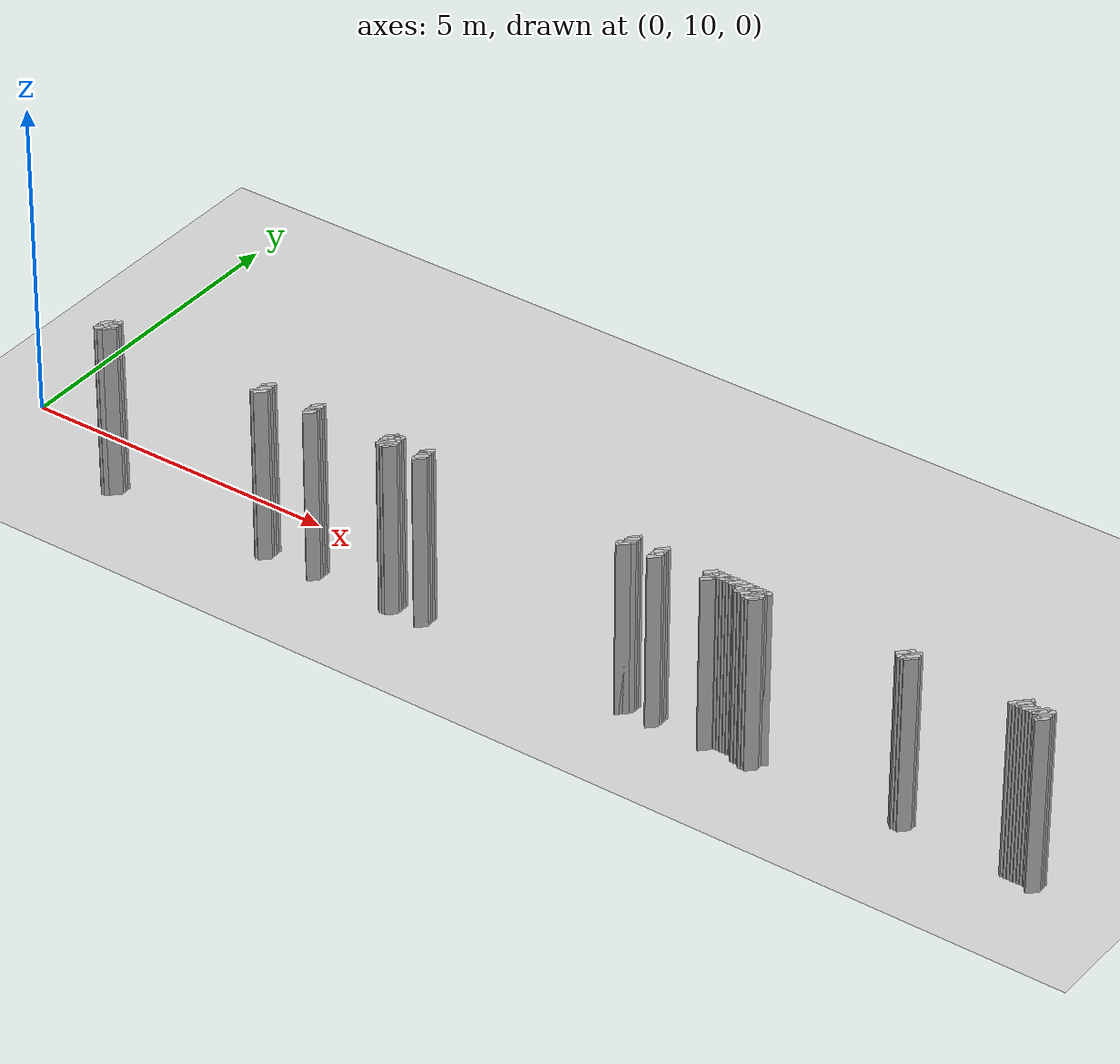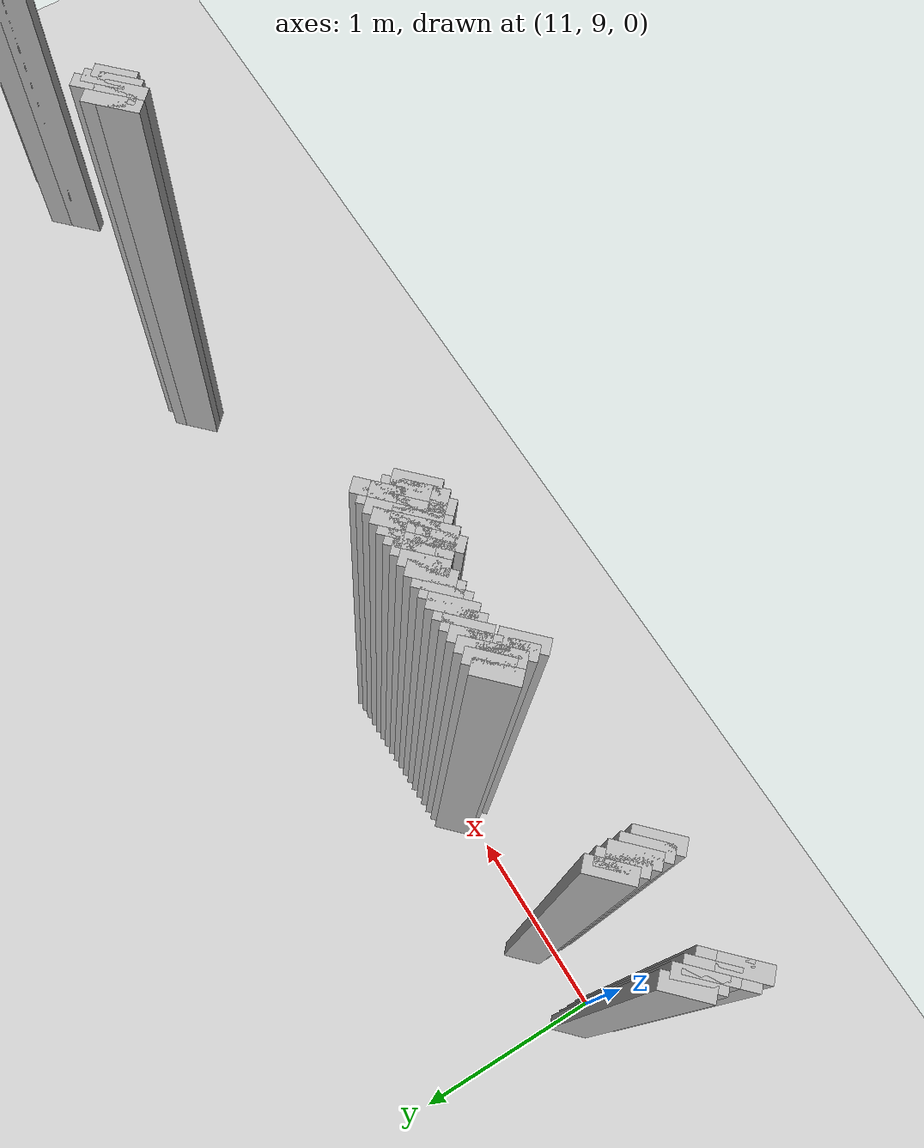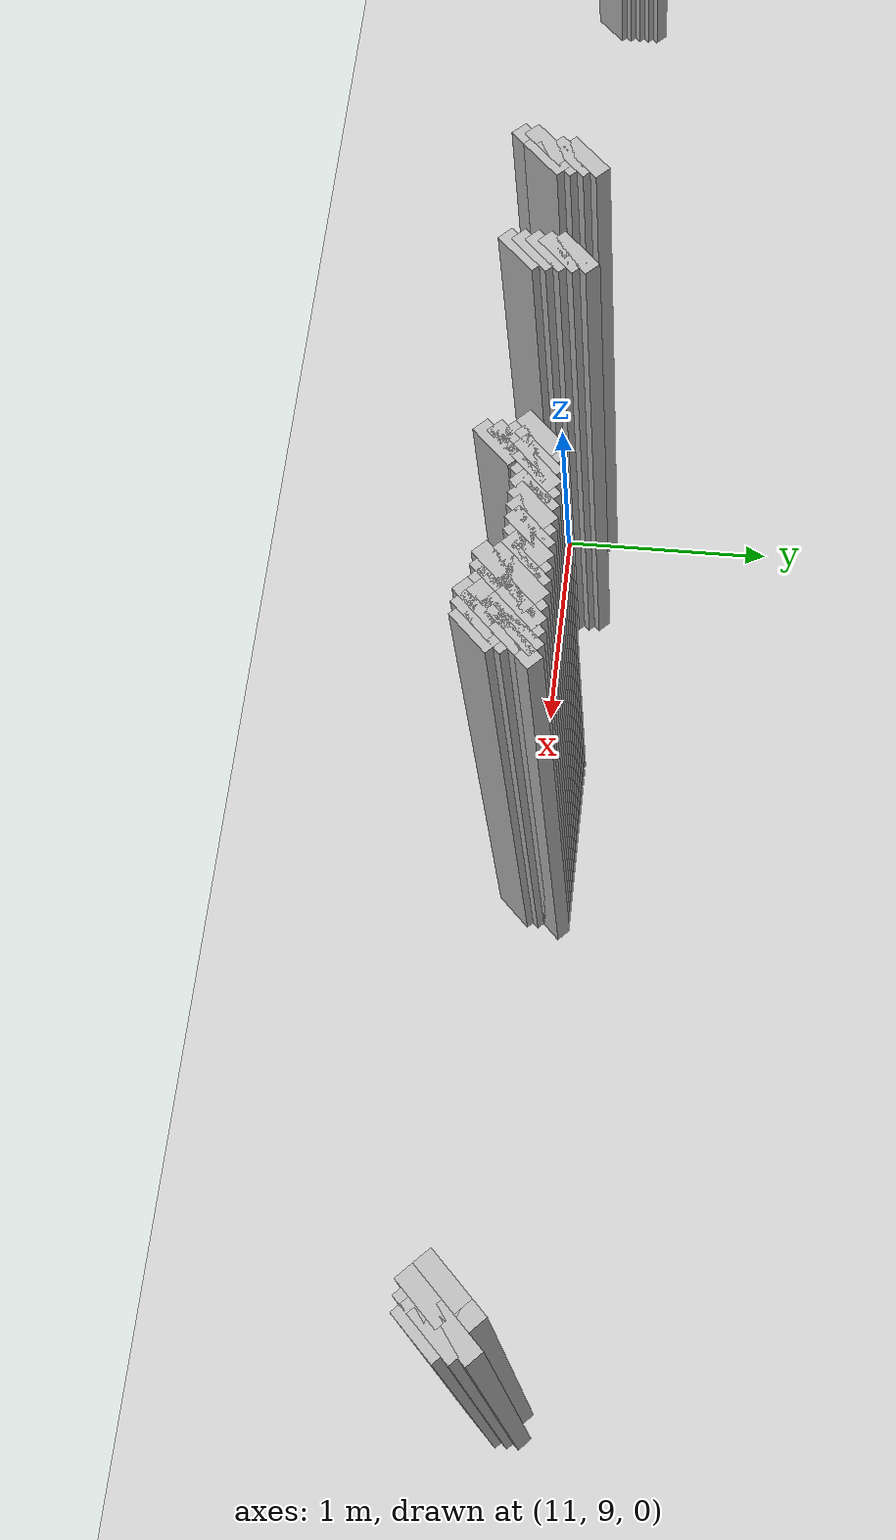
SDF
<sdf version="1.5">
 <world name="default">
  <include><uri>model://ground_plane</uri></include>
  <include><uri>model://sun</uri></include>
  <model name="grey_wall_1798">
   <static>1</static>
   <link name="link">
    <pose>4.8500000000000005 9.15  1.4 0 0 -0.7853981633974483</pose>
    <collision name="collision">
     <geometry><box><size>0.07071067811865576 .2  2.8</size></box></geometry>
    </collision>
    <visual name="visual">
     <cast_shadows>0</cast_shadows>
     <geometry><box><size>0.07071067811865576 .2  2.8</size></box></geometry>
    </visual>
   </link>
  </model>
  <model name="grey_wall_1799">
   <static>1</static>
   <link name="link">
    <pose>5.7 9.15  1.4 0 0 -0.7853981633974483</pose>
    <collision name="collision">
     <geometry><box><size>0.07071067811865576 .2  2.8</size></box></geometry>
    </collision>
    <visual name="visual">
     <cast_shadows>0</cast_shadows>
     <geometry><box><size>0.07071067811865576 .2  2.8</size></box></geometry>
    </visual>
   </link>
  </model>
  <model name="grey_wall_1800">
   <static>1</static>
   <link name="link">
    <pose>6.95 9.15  1.4 0 0 -0.7853981633974483</pose>
    <collision name="collision">
     <geometry><box><size>0.07071067811865576 .2  2.8</size></box></geometry>
    </collision>
    <visual name="visual">
     <cast_shadows>0</cast_shadows>
     <geometry><box><size>0.07071067811865576 .2  2.8</size></box></geometry>
    </visual>
   </link>
  </model>
  <model name="grey_wall_1801">
   <static>1</static>
   <link name="link">
    <pose>7.0 9.15  1.4 0 0 -0.7853981633974483</pose>
    <collision name="collision">
     <geometry><box><size>0.07071067811865576 .2  2.8</size></box></geometry>
    </collision>
    <visual name="visual">
     <cast_shadows>0</cast_shadows>
     <geometry><box><size>0.07071067811865576 .2  2.8</size></box></geometry>
    </visual>
   </link>
  </model>
  <model name="grey_wall_1802">
   <static>1</static>
   <link name="link">
    <pose>7.050000000000001 9.15  1.4 0 0 -0.7853981633974483</pose>
    <collision name="collision">
     <geometry><box><size>0.07071067811865576 .2  2.8</size></box></geometry>
    </collision>
    <visual name="visual">
     <cast_shadows>0</cast_shadows>
     <geometry><box><size>0.07071067811865576 .2  2.8</size></box></geometry>
    </visual>
   </link>
  </model>
  <model name="grey_wall_1803">
   <static>1</static>
   <link name="link">
    <pose>7.550000000000001 9.15  1.4 0 0 -0.7853981633974483</pose>
    <collision name="collision">
     <geometry><box><size>0.07071067811865576 .2  2.8</size></box></geometry>
    </collision>
    <visual name="visual">
     <cast_shadows>0</cast_shadows>
     <geometry><box><size>0.07071067811865576 .2  2.8</size></box></geometry>
    </visual>
   </link>
  </model>
  <model name="grey_wall_1804">
   <static>1</static>
   <link name="link">
    <pose>10.950000000000001 9.15  1.4 0 0 -0.7853981633974483</pose>
    <collision name="collision">
     <geometry><box><size>0.07071067811865576 .2  2.8</size></box></geometry>
    </collision>
    <visual name="visual">
     <cast_shadows>0</cast_shadows>
     <geometry><box><size>0.07071067811865576 .2  2.8</size></box></geometry>
    </visual>
   </link>
  </model>
  <model name="grey_wall_1805">
   <static>1</static>
   <link name="link">
    <pose>11.4 9.15  1.4 0 0 -0.7853981633974483</pose>
    <collision name="collision">
     <geometry><box><size>0.07071067811865576 .2  2.8</size></box></geometry>
    </collision>
    <visual name="visual">
     <cast_shadows>0</cast_shadows>
     <geometry><box><size>0.07071067811865576 .2  2.8</size></box></geometry>
    </visual>
   </link>
  </model>
  <model name="grey_wall_1806">
   <static>1</static>
   <link name="link">
    <pose>15.25 9.15  1.4 0 0 -0.7853981633974483</pose>
    <collision name="collision">
     <geometry><box><size>0.07071067811865576 .2  2.8</size></box></geometry>
    </collision>
    <visual name="visual">
     <cast_shadows>0</cast_shadows>
     <geometry><box><size>0.07071067811865576 .2  2.8</size></box></geometry>
    </visual>
   </link>
  </model>
  <model name="grey_wall_1807">
   <static>1</static>
   <link name="link">
    <pose>15.350000000000001 9.15  1.4 0 0 -0.7853981633974483</pose>
    <collision name="collision">
     <geometry><box><size>0.07071067811865576 .2  2.8</size></box></geometry>
    </collision>
    <visual name="visual">
     <cast_shadows>0</cast_shadows>
     <geometry><box><size>0.07071067811865576 .2  2.8</size></box></geometry>
    </visual>
   </link>
  </model>
  <model name="grey_wall_1808">
   <static>1</static>
   <link name="link">
    <pose>17.05 9.15  1.4 0 0 -0.7853981633974838</pose>
    <collision name="collision">
     <geometry><box><size>0.07071067811865325 .2  2.8</size></box></geometry>
    </collision>
    <visual name="visual">
     <cast_shadows>0</cast_shadows>
     <geometry><box><size>0.07071067811865325 .2  2.8</size></box></geometry>
    </visual>
   </link>
  </model>
  <model name="grey_wall_1809">
   <static>1</static>
   <link name="link">
    <pose>2.2 9.1  1.4 0 0 -0.7853981633974572</pose>
    <collision name="collision">
     <geometry><box><size>0.07071067811865513 .2  2.8</size></box></geometry>
    </collision>
    <visual name="visual">
     <cast_shadows>0</cast_shadows>
     <geometry><box><size>0.07071067811865513 .2  2.8</size></box></geometry>
    </visual>
   </link>
  </model>
  <model name="grey_wall_1810">
   <static>1</static>
   <link name="link">
    <pose>4.8500000000000005 9.1  1.4 0 0 -0.7853981633974483</pose>
    <collision name="collision">
     <geometry><box><size>0.07071067811865576 .2  2.8</size></box></geometry>
    </collision>
    <visual name="visual">
     <cast_shadows>0</cast_shadows>
     <geometry><box><size>0.07071067811865576 .2  2.8</size></box></geometry>
    </visual>
   </link>
  </model>
  <model name="grey_wall_1811">
   <static>1</static>
   <link name="link">
    <pose>5.7 9.1  1.4 0 0 -0.7853981633974483</pose>
    <collision name="collision">
     <geometry><box><size>0.07071067811865576 .2  2.8</size></box></geometry>
    </collision>
    <visual name="visual">
     <cast_shadows>0</cast_shadows>
     <geometry><box><size>0.07071067811865576 .2  2.8</size></box></geometry>
    </visual>
   </link>
  </model>
  <model name="grey_wall_1812">
   <static>1</static>
   <link name="link">
    <pose>6.95 9.1  1.4 0 0 -0.7853981633974483</pose>
    <collision name="collision">
     <geometry><box><size>0.07071067811865576 .2  2.8</size></box></geometry>
    </collision>
    <visual name="visual">
     <cast_shadows>0</cast_shadows>
     <geometry><box><size>0.07071067811865576 .2  2.8</size></box></geometry>
    </visual>
   </link>
  </model>
  <model name="grey_wall_1813">
   <static>1</static>
   <link name="link">
    <pose>7.0 9.1  1.4 0 0 -0.7853981633974483</pose>
    <collision name="collision">
     <geometry><box><size>0.07071067811865576 .2  2.8</size></box></geometry>
    </collision>
    <visual name="visual">
     <cast_shadows>0</cast_shadows>
     <geometry><box><size>0.07071067811865576 .2  2.8</size></box></geometry>
    </visual>
   </link>
  </model>
  <model name="grey_wall_1814">
   <static>1</static>
   <link name="link">
    <pose>7.050000000000001 9.1  1.4 0 0 -0.7853981633974483</pose>
    <collision name="collision">
     <geometry><box><size>0.07071067811865576 .2  2.8</size></box></geometry>
    </collision>
    <visual name="visual">
     <cast_shadows>0</cast_shadows>
     <geometry><box><size>0.07071067811865576 .2  2.8</size></box></geometry>
    </visual>
   </link>
  </model>
  <model name="grey_wall_1815">
   <static>1</static>
   <link name="link">
    <pose>7.550000000000001 9.1  1.4 0 0 -0.7853981633974483</pose>
    <collision name="collision">
     <geometry><box><size>0.07071067811865576 .2  2.8</size></box></geometry>
    </collision>
    <visual name="visual">
     <cast_shadows>0</cast_shadows>
     <geometry><box><size>0.07071067811865576 .2  2.8</size></box></geometry>
    </visual>
   </link>
  </model>
  <model name="grey_wall_1816">
   <static>1</static>
   <link name="link">
    <pose>10.950000000000001 9.1  1.4 0 0 -0.7853981633974483</pose>
    <collision name="collision">
     <geometry><box><size>0.07071067811865576 .2  2.8</size></box></geometry>
    </collision>
    <visual name="visual">
     <cast_shadows>0</cast_shadows>
     <geometry><box><size>0.07071067811865576 .2  2.8</size></box></geometry>
    </visual>
   </link>
  </model>
  <model name="grey_wall_1817">
   <static>1</static>
   <link name="link">
    <pose>11.4 9.1  1.4 0 0 -0.7853981633974483</pose>
    <collision name="collision">
     <geometry><box><size>0.07071067811865576 .2  2.8</size></box></geometry>
    </collision>
    <visual name="visual">
     <cast_shadows>0</cast_shadows>
     <geometry><box><size>0.07071067811865576 .2  2.8</size></box></geometry>
    </visual>
   </link>
  </model>
  <model name="grey_wall_1818">
   <static>1</static>
   <link name="link">
    <pose>12.200000000000001 9.1  1.4 0 0 -0.7853981633974483</pose>
    <collision name="collision">
     <geometry><box><size>0.07071067811865576 .2  2.8</size></box></geometry>
    </collision>
    <visual name="visual">
     <cast_shadows>0</cast_shadows>
     <geometry><box><size>0.07071067811865576 .2  2.8</size></box></geometry>
    </visual>
   </link>
  </model>
  <model name="grey_wall_1819">
   <static>1</static>
   <link name="link">
    <pose>12.25 9.1  1.4 0 0 -0.7853981633974483</pose>
    <collision name="collision">
     <geometry><box><size>0.07071067811865576 .2  2.8</size></box></geometry>
    </collision>
    <visual name="visual">
     <cast_shadows>0</cast_shadows>
     <geometry><box><size>0.07071067811865576 .2  2.8</size></box></geometry>
    </visual>
   </link>
  </model>
  <model name="grey_wall_1820">
   <static>1</static>
   <link name="link">
    <pose>12.3 9.1  1.4 0 0 -0.7853981633974483</pose>
    <collision name="collision">
     <geometry><box><size>0.07071067811865576 .2  2.8</size></box></geometry>
    </collision>
    <visual name="visual">
     <cast_shadows>0</cast_shadows>
     <geometry><box><size>0.07071067811865576 .2  2.8</size></box></geometry>
    </visual>
   </link>
  </model>
  <model name="grey_wall_1821">
   <static>1</static>
   <link name="link">
    <pose>12.350000000000001 9.1  1.4 0 0 -0.7853981633974483</pose>
    <collision name="collision">
     <geometry><box><size>0.07071067811865576 .2  2.8</size></box></geometry>
    </collision>
    <visual name="visual">
     <cast_shadows>0</cast_shadows>
     <geometry><box><size>0.07071067811865576 .2  2.8</size></box></geometry>
    </visual>
   </link>
  </model>
  <model name="grey_wall_1822">
   <static>1</static>
   <link name="link">
    <pose>12.4 9.1  1.4 0 0 -0.7853981633974483</pose>
    <collision name="collision">
     <geometry><box><size>0.07071067811865576 .2  2.8</size></box></geometry>
    </collision>
    <visual name="visual">
     <cast_shadows>0</cast_shadows>
     <geometry><box><size>0.07071067811865576 .2  2.8</size></box></geometry>
    </visual>
   </link>
  </model>
  <model name="grey_wall_1823">
   <static>1</static>
   <link name="link">
    <pose>12.450000000000001 9.1  1.4 0 0 -0.7853981633974483</pose>
    <collision name="collision">
     <geometry><box><size>0.07071067811865576 .2  2.8</size></box></geometry>
    </collision>
    <visual name="visual">
     <cast_shadows>0</cast_shadows>
     <geometry><box><size>0.07071067811865576 .2  2.8</size></box></geometry>
    </visual>
   </link>
  </model>
  <model name="grey_wall_1824">
   <static>1</static>
   <link name="link">
    <pose>12.5 9.1  1.4 0 0 -0.7853981633974483</pose>
    <collision name="collision">
     <geometry><box><size>0.07071067811865576 .2  2.8</size></box></geometry>
    </collision>
    <visual name="visual">
     <cast_shadows>0</cast_shadows>
     <geometry><box><size>0.07071067811865576 .2  2.8</size></box></geometry>
    </visual>
   </link>
  </model>
  <model name="grey_wall_1825">
   <static>1</static>
   <link name="link">
    <pose>12.55 9.1  1.4 0 0 -0.7853981633974483</pose>
    <collision name="collision">
     <geometry><box><size>0.07071067811865576 .2  2.8</size></box></geometry>
    </collision>
    <visual name="visual">
     <cast_shadows>0</cast_shadows>
     <geometry><box><size>0.07071067811865576 .2  2.8</size></box></geometry>
    </visual>
   </link>
  </model>
  <model name="grey_wall_1826">
   <static>1</static>
   <link name="link">
    <pose>12.600000000000001 9.1  1.4 0 0 -0.7853981633974483</pose>
    <collision name="collision">
     <geometry><box><size>0.07071067811865576 .2  2.8</size></box></geometry>
    </collision>
    <visual name="visual">
     <cast_shadows>0</cast_shadows>
     <geometry><box><size>0.07071067811865576 .2  2.8</size></box></geometry>
    </visual>
   </link>
  </model>
  <model name="grey_wall_1827">
   <static>1</static>
   <link name="link">
    <pose>12.65 9.1  1.4 0 0 -0.7853981633974483</pose>
    <collision name="collision">
     <geometry><box><size>0.07071067811865576 .2  2.8</size></box></geometry>
    </collision>
    <visual name="visual">
     <cast_shadows>0</cast_shadows>
     <geometry><box><size>0.07071067811865576 .2  2.8</size></box></geometry>
    </visual>
   </link>
  </model>
  <model name="grey_wall_1828">
   <static>1</static>
   <link name="link">
    <pose>12.700000000000001 9.1  1.4 0 0 -0.7853981633974483</pose>
    <collision name="collision">
     <geometry><box><size>0.07071067811865576 .2  2.8</size></box></geometry>
    </collision>
    <visual name="visual">
     <cast_shadows>0</cast_shadows>
     <geometry><box><size>0.07071067811865576 .2  2.8</size></box></geometry>
    </visual>
   </link>
  </model>
  <model name="grey_wall_1829">
   <static>1</static>
   <link name="link">
    <pose>12.75 9.1  1.4 0 0 -0.7853981633974483</pose>
    <collision name="collision">
     <geometry><box><size>0.07071067811865576 .2  2.8</size></box></geometry>
    </collision>
    <visual name="visual">
     <cast_shadows>0</cast_shadows>
     <geometry><box><size>0.07071067811865576 .2  2.8</size></box></geometry>
    </visual>
   </link>
  </model>
  <model name="grey_wall_1830">
   <static>1</static>
   <link name="link">
    <pose>12.8 9.1  1.4 0 0 -0.7853981633974483</pose>
    <collision name="collision">
     <geometry><box><size>0.07071067811865576 .2  2.8</size></box></geometry>
    </collision>
    <visual name="visual">
     <cast_shadows>0</cast_shadows>
     <geometry><box><size>0.07071067811865576 .2  2.8</size></box></geometry>
    </visual>
   </link>
  </model>
  <model name="grey_wall_1831">
   <static>1</static>
   <link name="link">
    <pose>12.850000000000001 9.1  1.4 0 0 -0.7853981633974483</pose>
    <collision name="collision">
     <geometry><box><size>0.07071067811865576 .2  2.8</size></box></geometry>
    </collision>
    <visual name="visual">
     <cast_shadows>0</cast_shadows>
     <geometry><box><size>0.07071067811865576 .2  2.8</size></box></geometry>
    </visual>
   </link>
  </model>
  <model name="grey_wall_1832">
   <static>1</static>
   <link name="link">
    <pose>12.9 9.1  1.4 0 0 -0.7853981633974483</pose>
    <collision name="collision">
     <geometry><box><size>0.07071067811865576 .2  2.8</size></box></geometry>
    </collision>
    <visual name="visual">
     <cast_shadows>0</cast_shadows>
     <geometry><box><size>0.07071067811865576 .2  2.8</size></box></geometry>
    </visual>
   </link>
  </model>
  <model name="grey_wall_1833">
   <static>1</static>
   <link name="link">
    <pose>12.950000000000001 9.1  1.4 0 0 -0.7853981633974483</pose>
    <collision name="collision">
     <geometry><box><size>0.07071067811865576 .2  2.8</size></box></geometry>
    </collision>
    <visual name="visual">
     <cast_shadows>0</cast_shadows>
     <geometry><box><size>0.07071067811865576 .2  2.8</size></box></geometry>
    </visual>
   </link>
  </model>
  <model name="grey_wall_1834">
   <static>1</static>
   <link name="link">
    <pose>13.0 9.1  1.4 0 0 -0.7853981633974483</pose>
    <collision name="collision">
     <geometry><box><size>0.07071067811865576 .2  2.8</size></box></geometry>
    </collision>
    <visual name="visual">
     <cast_shadows>0</cast_shadows>
     <geometry><box><size>0.07071067811865576 .2  2.8</size></box></geometry>
    </visual>
   </link>
  </model>
  <model name="grey_wall_1835">
   <static>1</static>
   <link name="link">
    <pose>13.05 9.1  1.4 0 0 -0.7853981633974483</pose>
    <collision name="collision">
     <geometry><box><size>0.07071067811865576 .2  2.8</size></box></geometry>
    </collision>
    <visual name="visual">
     <cast_shadows>0</cast_shadows>
     <geometry><box><size>0.07071067811865576 .2  2.8</size></box></geometry>
    </visual>
   </link>
  </model>
  <model name="grey_wall_1836">
   <static>1</static>
   <link name="link">
    <pose>15.200000000000001 9.1  1.4 0 0 -0.7853981633974483</pose>
    <collision name="collision">
     <geometry><box><size>0.07071067811865576 .2  2.8</size></box></geometry>
    </collision>
    <visual name="visual">
     <cast_shadows>0</cast_shadows>
     <geometry><box><size>0.07071067811865576 .2  2.8</size></box></geometry>
    </visual>
   </link>
  </model>
  <model name="grey_wall_1837">
   <static>1</static>
   <link name="link">
    <pose>15.25 9.1  1.4 0 0 -0.7853981633974483</pose>
    <collision name="collision">
     <geometry><box><size>0.07071067811865576 .2  2.8</size></box></geometry>
    </collision>
    <visual name="visual">
     <cast_shadows>0</cast_shadows>
     <geometry><box><size>0.07071067811865576 .2  2.8</size></box></geometry>
    </visual>
   </link>
  </model>
  <model name="grey_wall_1838">
   <static>1</static>
   <link name="link">
    <pose>15.350000000000001 9.1  1.4 0 0 -0.7853981633974483</pose>
    <collision name="collision">
     <geometry><box><size>0.07071067811865576 .2  2.8</size></box></geometry>
    </collision>
    <visual name="visual">
     <cast_shadows>0</cast_shadows>
     <geometry><box><size>0.07071067811865576 .2  2.8</size></box></geometry>
    </visual>
   </link>
  </model>
  <model name="grey_wall_1839">
   <static>1</static>
   <link name="link">
    <pose>17.05 9.1  1.4 0 0 -0.7853981633974838</pose>
    <collision name="collision">
     <geometry><box><size>0.07071067811865325 .2  2.8</size></box></geometry>
    </collision>
    <visual name="visual">
     <cast_shadows>0</cast_shadows>
     <geometry><box><size>0.07071067811865325 .2  2.8</size></box></geometry>
    </visual>
   </link>
  </model>
  <model name="grey_wall_1840">
   <static>1</static>
   <link name="link">
    <pose>17.3 9.1  1.4 0 0 -0.7853981633974838</pose>
    <collision name="collision">
     <geometry><box><size>0.07071067811865325 .2  2.8</size></box></geometry>
    </collision>
    <visual name="visual">
     <cast_shadows>0</cast_shadows>
     <geometry><box><size>0.07071067811865325 .2  2.8</size></box></geometry>
    </visual>
   </link>
  </model>
  <model name="grey_wall_1841">
   <static>1</static>
   <link name="link">
    <pose>17.35 9.1  1.4 0 0 -0.7853981633974838</pose>
    <collision name="collision">
     <geometry><box><size>0.07071067811865325 .2  2.8</size></box></geometry>
    </collision>
    <visual name="visual">
     <cast_shadows>0</cast_shadows>
     <geometry><box><size>0.07071067811865325 .2  2.8</size></box></geometry>
    </visual>
   </link>
  </model>
  <model name="grey_wall_1842">
   <static>1</static>
   <link name="link">
    <pose>17.400000000000002 9.1  1.4 0 0 -0.7853981633974838</pose>
    <collision name="collision">
     <geometry><box><size>0.07071067811865325 .2  2.8</size></box></geometry>
    </collision>
    <visual name="visual">
     <cast_shadows>0</cast_shadows>
     <geometry><box><size>0.07071067811865325 .2  2.8</size></box></geometry>
    </visual>
   </link>
  </model>
  <model name="grey_wall_1843">
   <static>1</static>
   <link name="link">
    <pose>2.1 9.05  1.4 0 0 -0.7853981633974572</pose>
    <collision name="collision">
     <geometry><box><size>0.07071067811865513 .2  2.8</size></box></geometry>
    </collision>
    <visual name="visual">
     <cast_shadows>0</cast_shadows>
     <geometry><box><size>0.07071067811865513 .2  2.8</size></box></geometry>
    </visual>
   </link>
  </model>
  <model name="grey_wall_1844">
   <static>1</static>
   <link name="link">
    <pose>2.15 9.05  1.4 0 0 -0.7853981633974572</pose>
    <collision name="collision">
     <geometry><box><size>0.07071067811865513 .2  2.8</size></box></geometry>
    </collision>
    <visual name="visual">
     <cast_shadows>0</cast_shadows>
     <geometry><box><size>0.07071067811865513 .2  2.8</size></box></geometry>
    </visual>
   </link>
  </model>
  <model name="grey_wall_1845">
   <static>1</static>
   <link name="link">
    <pose>2.2 9.05  1.4 0 0 -0.7853981633974572</pose>
    <collision name="collision">
     <geometry><box><size>0.07071067811865513 .2  2.8</size></box></geometry>
    </collision>
    <visual name="visual">
     <cast_shadows>0</cast_shadows>
     <geometry><box><size>0.07071067811865513 .2  2.8</size></box></geometry>
    </visual>
   </link>
  </model>
  <model name="grey_wall_1846">
   <static>1</static>
   <link name="link">
    <pose>4.8500000000000005 9.05  1.4 0 0 -0.7853981633974483</pose>
    <collision name="collision">
     <geometry><box><size>0.07071067811865576 .2  2.8</size></box></geometry>
    </collision>
    <visual name="visual">
     <cast_shadows>0</cast_shadows>
     <geometry><box><size>0.07071067811865576 .2  2.8</size></box></geometry>
    </visual>
   </link>
  </model>
  <model name="grey_wall_1847">
   <static>1</static>
   <link name="link">
    <pose>5.7 9.05  1.4 0 0 -0.7853981633974483</pose>
    <collision name="collision">
     <geometry><box><size>0.07071067811865576 .2  2.8</size></box></geometry>
    </collision>
    <visual name="visual">
     <cast_shadows>0</cast_shadows>
     <geometry><box><size>0.07071067811865576 .2  2.8</size></box></geometry>
    </visual>
   </link>
  </model>
  <model name="grey_wall_1848">
   <static>1</static>
   <link name="link">
    <pose>6.95 9.05  1.4 0 0 -0.7853981633974483</pose>
    <collision name="collision">
     <geometry><box><size>0.07071067811865576 .2  2.8</size></box></geometry>
    </collision>
    <visual name="visual">
     <cast_shadows>0</cast_shadows>
     <geometry><box><size>0.07071067811865576 .2  2.8</size></box></geometry>
    </visual>
   </link>
  </model>
  <model name="grey_wall_1849">
   <static>1</static>
   <link name="link">
    <pose>7.050000000000001 9.05  1.4 0 0 -0.7853981633974483</pose>
    <collision name="collision">
     <geometry><box><size>0.07071067811865576 .2  2.8</size></box></geometry>
    </collision>
    <visual name="visual">
     <cast_shadows>0</cast_shadows>
     <geometry><box><size>0.07071067811865576 .2  2.8</size></box></geometry>
    </visual>
   </link>
  </model>
  <model name="grey_wall_1850">
   <static>1</static>
   <link name="link">
    <pose>7.550000000000001 9.05  1.4 0 0 -0.7853981633974483</pose>
    <collision name="collision">
     <geometry><box><size>0.07071067811865576 .2  2.8</size></box></geometry>
    </collision>
    <visual name="visual">
     <cast_shadows>0</cast_shadows>
     <geometry><box><size>0.07071067811865576 .2  2.8</size></box></geometry>
    </visual>
   </link>
  </model>
  <model name="grey_wall_1851">
   <static>1</static>
   <link name="link">
    <pose>10.950000000000001 9.05  1.4 0 0 -0.7853981633974483</pose>
    <collision name="collision">
     <geometry><box><size>0.07071067811865576 .2  2.8</size></box></geometry>
    </collision>
    <visual name="visual">
     <cast_shadows>0</cast_shadows>
     <geometry><box><size>0.07071067811865576 .2  2.8</size></box></geometry>
    </visual>
   </link>
  </model>
  <model name="grey_wall_1852">
   <static>1</static>
   <link name="link">
    <pose>11.4 9.05  1.4 0 0 -0.7853981633974483</pose>
    <collision name="collision">
     <geometry><box><size>0.07071067811865576 .2  2.8</size></box></geometry>
    </collision>
    <visual name="visual">
     <cast_shadows>0</cast_shadows>
     <geometry><box><size>0.07071067811865576 .2  2.8</size></box></geometry>
    </visual>
   </link>
  </model>
  <model name="grey_wall_1853">
   <static>1</static>
   <link name="link">
    <pose>12.25 9.05  1.4 0 0 -0.7853981633974483</pose>
    <collision name="collision">
     <geometry><box><size>0.07071067811865576 .2  2.8</size></box></geometry>
    </collision>
    <visual name="visual">
     <cast_shadows>0</cast_shadows>
     <geometry><box><size>0.07071067811865576 .2  2.8</size></box></geometry>
    </visual>
   </link>
  </model>
  <model name="grey_wall_1854">
   <static>1</static>
   <link name="link">
    <pose>12.75 9.05  1.4 0 0 -0.7853981633974483</pose>
    <collision name="collision">
     <geometry><box><size>0.07071067811865576 .2  2.8</size></box></geometry>
    </collision>
    <visual name="visual">
     <cast_shadows>0</cast_shadows>
     <geometry><box><size>0.07071067811865576 .2  2.8</size></box></geometry>
    </visual>
   </link>
  </model>
  <model name="grey_wall_1855">
   <static>1</static>
   <link name="link">
    <pose>12.850000000000001 9.05  1.4 0 0 -0.7853981633974483</pose>
    <collision name="collision">
     <geometry><box><size>0.07071067811865576 .2  2.8</size></box></geometry>
    </collision>
    <visual name="visual">
     <cast_shadows>0</cast_shadows>
     <geometry><box><size>0.07071067811865576 .2  2.8</size></box></geometry>
    </visual>
   </link>
  </model>
  <model name="grey_wall_1856">
   <static>1</static>
   <link name="link">
    <pose>12.950000000000001 9.05  1.4 0 0 -0.7853981633974483</pose>
    <collision name="collision">
     <geometry><box><size>0.07071067811865576 .2  2.8</size></box></geometry>
    </collision>
    <visual name="visual">
     <cast_shadows>0</cast_shadows>
     <geometry><box><size>0.07071067811865576 .2  2.8</size></box></geometry>
    </visual>
   </link>
  </model>
  <model name="grey_wall_1857">
   <static>1</static>
   <link name="link">
    <pose>13.0 9.05  1.4 0 0 -0.7853981633974483</pose>
    <collision name="collision">
     <geometry><box><size>0.07071067811865576 .2  2.8</size></box></geometry>
    </collision>
    <visual name="visual">
     <cast_shadows>0</cast_shadows>
     <geometry><box><size>0.07071067811865576 .2  2.8</size></box></geometry>
    </visual>
   </link>
  </model>
  <model name="grey_wall_1858">
   <static>1</static>
   <link name="link">
    <pose>15.25 9.05  1.4 0 0 -0.7853981633974483</pose>
    <collision name="collision">
     <geometry><box><size>0.07071067811865576 .2  2.8</size></box></geometry>
    </collision>
    <visual name="visual">
     <cast_shadows>0</cast_shadows>
     <geometry><box><size>0.07071067811865576 .2  2.8</size></box></geometry>
    </visual>
   </link>
  </model>
  <model name="grey_wall_1859">
   <static>1</static>
   <link name="link">
    <pose>15.3 9.05  1.4 0 0 -0.7853981633974483</pose>
    <collision name="collision">
     <geometry><box><size>0.07071067811865576 .2  2.8</size></box></geometry>
    </collision>
    <visual name="visual">
     <cast_shadows>0</cast_shadows>
     <geometry><box><size>0.07071067811865576 .2  2.8</size></box></geometry>
    </visual>
   </link>
  </model>
  <model name="grey_wall_1860">
   <static>1</static>
   <link name="link">
    <pose>15.350000000000001 9.05  1.4 0 0 -0.7853981633974483</pose>
    <collision name="collision">
     <geometry><box><size>0.07071067811865576 .2  2.8</size></box></geometry>
    </collision>
    <visual name="visual">
     <cast_shadows>0</cast_shadows>
     <geometry><box><size>0.07071067811865576 .2  2.8</size></box></geometry>
    </visual>
   </link>
  </model>
  <model name="grey_wall_1861">
   <static>1</static>
   <link name="link">
    <pose>16.95 9.05  1.4 0 0 -0.7853981633974838</pose>
    <collision name="collision">
     <geometry><box><size>0.07071067811865325 .2  2.8</size></box></geometry>
    </collision>
    <visual name="visual">
     <cast_shadows>0</cast_shadows>
     <geometry><box><size>0.07071067811865325 .2  2.8</size></box></geometry>
    </visual>
   </link>
  </model>
  <model name="grey_wall_1862">
   <static>1</static>
   <link name="link">
    <pose>17.0 9.05  1.4 0 0 -0.7853981633974838</pose>
    <collision name="collision">
     <geometry><box><size>0.07071067811865325 .2  2.8</size></box></geometry>
    </collision>
    <visual name="visual">
     <cast_shadows>0</cast_shadows>
     <geometry><box><size>0.07071067811865325 .2  2.8</size></box></geometry>
    </visual>
   </link>
  </model>
  <model name="grey_wall_1863">
   <static>1</static>
   <link name="link">
    <pose>17.05 9.05  1.4 0 0 -0.7853981633974838</pose>
    <collision name="collision">
     <geometry><box><size>0.07071067811865325 .2  2.8</size></box></geometry>
    </collision>
    <visual name="visual">
     <cast_shadows>0</cast_shadows>
     <geometry><box><size>0.07071067811865325 .2  2.8</size></box></geometry>
    </visual>
   </link>
  </model>
  <model name="grey_wall_1864">
   <static>1</static>
   <link name="link">
    <pose>17.1 9.05  1.4 0 0 -0.7853981633974838</pose>
    <collision name="collision">
     <geometry><box><size>0.07071067811865325 .2  2.8</size></box></geometry>
    </collision>
    <visual name="visual">
     <cast_shadows>0</cast_shadows>
     <geometry><box><size>0.07071067811865325 .2  2.8</size></box></geometry>
    </visual>
   </link>
  </model>
  <model name="grey_wall_1865">
   <static>1</static>
   <link name="link">
    <pose>17.150000000000002 9.05  1.4 0 0 -0.7853981633974838</pose>
    <collision name="collision">
     <geometry><box><size>0.07071067811865325 .2  2.8</size></box></geometry>
    </collision>
    <visual name="visual">
     <cast_shadows>0</cast_shadows>
     <geometry><box><size>0.07071067811865325 .2  2.8</size></box></geometry>
    </visual>
   </link>
  </model>
  <model name="grey_wall_1866">
   <static>1</static>
   <link name="link">
    <pose>17.2 9.05  1.4 0 0 -0.7853981633974838</pose>
    <collision name="collision">
     <geometry><box><size>0.07071067811865325 .2  2.8</size></box></geometry>
    </collision>
    <visual name="visual">
     <cast_shadows>0</cast_shadows>
     <geometry><box><size>0.07071067811865325 .2  2.8</size></box></geometry>
    </visual>
   </link>
  </model>
  <model name="grey_wall_1867">
   <static>1</static>
   <link name="link">
    <pose>17.25 9.05  1.4 0 0 -0.7853981633974838</pose>
    <collision name="collision">
     <geometry><box><size>0.07071067811865325 .2  2.8</size></box></geometry>
    </collision>
    <visual name="visual">
     <cast_shadows>0</cast_shadows>
     <geometry><box><size>0.07071067811865325 .2  2.8</size></box></geometry>
    </visual>
   </link>
  </model>
  <model name="grey_wall_1868">
   <static>1</static>
   <link name="link">
    <pose>17.3 9.05  1.4 0 0 -0.7853981633974838</pose>
    <collision name="collision">
     <geometry><box><size>0.07071067811865325 .2  2.8</size></box></geometry>
    </collision>
    <visual name="visual">
     <cast_shadows>0</cast_shadows>
     <geometry><box><size>0.07071067811865325 .2  2.8</size></box></geometry>
    </visual>
   </link>
  </model>
  <model name="grey_wall_1869">
   <static>1</static>
   <link name="link">
    <pose>17.400000000000002 9.05  1.4 0 0 -0.7853981633974838</pose>
    <collision name="collision">
     <geometry><box><size>0.07071067811865325 .2  2.8</size></box></geometry>
    </collision>
    <visual name="visual">
     <cast_shadows>0</cast_shadows>
     <geometry><box><size>0.07071067811865325 .2  2.8</size></box></geometry>
    </visual>
   </link>
  </model>
  <model name="grey_wall_1870">
   <static>1</static>
   <link name="link">
    <pose>2.1 9.0  1.4 0 0 -0.7853981633974572</pose>
    <collision name="collision">
     <geometry><box><size>0.07071067811865513 .2  2.8</size></box></geometry>
    </collision>
    <visual name="visual">
     <cast_shadows>0</cast_shadows>
     <geometry><box><size>0.07071067811865513 .2  2.8</size></box></geometry>
    </visual>
   </link>
  </model>
  <model name="grey_wall_1871">
   <static>1</static>
   <link name="link">
    <pose>2.2 9.0  1.4 0 0 -0.7853981633974572</pose>
    <collision name="collision">
     <geometry><box><size>0.07071067811865513 .2  2.8</size></box></geometry>
    </collision>
    <visual name="visual">
     <cast_shadows>0</cast_shadows>
     <geometry><box><size>0.07071067811865513 .2  2.8</size></box></geometry>
    </visual>
   </link>
  </model>
  <model name="grey_wall_1872">
   <static>1</static>
   <link name="link">
    <pose>4.8500000000000005 9.0  1.4 0 0 -0.7853981633974483</pose>
    <collision name="collision">
     <geometry><box><size>0.07071067811865576 .2  2.8</size></box></geometry>
    </collision>
    <visual name="visual">
     <cast_shadows>0</cast_shadows>
     <geometry><box><size>0.07071067811865576 .2  2.8</size></box></geometry>
    </visual>
   </link>
  </model>
  <model name="grey_wall_1873">
   <static>1</static>
   <link name="link">
    <pose>5.7 9.0  1.4 0 0 -0.7853981633974483</pose>
    <collision name="collision">
     <geometry><box><size>0.07071067811865576 .2  2.8</size></box></geometry>
    </collision>
    <visual name="visual">
     <cast_shadows>0</cast_shadows>
     <geometry><box><size>0.07071067811865576 .2  2.8</size></box></geometry>
    </visual>
   </link>
  </model>
  <model name="grey_wall_1874">
   <static>1</static>
   <link name="link">
    <pose>6.95 9.0  1.4 0 0 -0.7853981633974483</pose>
    <collision name="collision">
     <geometry><box><size>0.07071067811865576 .2  2.8</size></box></geometry>
    </collision>
    <visual name="visual">
     <cast_shadows>0</cast_shadows>
     <geometry><box><size>0.07071067811865576 .2  2.8</size></box></geometry>
    </visual>
   </link>
  </model>
  <model name="grey_wall_1875">
   <static>1</static>
   <link name="link">
    <pose>7.050000000000001 9.0  1.4 0 0 -0.7853981633974483</pose>
    <collision name="collision">
     <geometry><box><size>0.07071067811865576 .2  2.8</size></box></geometry>
    </collision>
    <visual name="visual">
     <cast_shadows>0</cast_shadows>
     <geometry><box><size>0.07071067811865576 .2  2.8</size></box></geometry>
    </visual>
   </link>
  </model>
  <model name="grey_wall_1876">
   <static>1</static>
   <link name="link">
    <pose>7.550000000000001 9.0  1.4 0 0 -0.7853981633974483</pose>
    <collision name="collision">
     <geometry><box><size>0.07071067811865576 .2  2.8</size></box></geometry>
    </collision>
    <visual name="visual">
     <cast_shadows>0</cast_shadows>
     <geometry><box><size>0.07071067811865576 .2  2.8</size></box></geometry>
    </visual>
   </link>
  </model>
  <model name="grey_wall_1877">
   <static>1</static>
   <link name="link">
    <pose>10.9 9.0  1.4 0 0 -0.7853981633974483</pose>
    <collision name="collision">
     <geometry><box><size>0.07071067811865576 .2  2.8</size></box></geometry>
    </collision>
    <visual name="visual">
     <cast_shadows>0</cast_shadows>
     <geometry><box><size>0.07071067811865576 .2  2.8</size></box></geometry>
    </visual>
   </link>
  </model>
  <model name="grey_wall_1878">
   <static>1</static>
   <link name="link">
    <pose>10.950000000000001 9.0  1.4 0 0 -0.7853981633974483</pose>
    <collision name="collision">
     <geometry><box><size>0.07071067811865576 .2  2.8</size></box></geometry>
    </collision>
    <visual name="visual">
     <cast_shadows>0</cast_shadows>
     <geometry><box><size>0.07071067811865576 .2  2.8</size></box></geometry>
    </visual>
   </link>
  </model>
  <model name="grey_wall_1879">
   <static>1</static>
   <link name="link">
    <pose>11.4 9.0  1.4 0 0 -0.7853981633974483</pose>
    <collision name="collision">
     <geometry><box><size>0.07071067811865576 .2  2.8</size></box></geometry>
    </collision>
    <visual name="visual">
     <cast_shadows>0</cast_shadows>
     <geometry><box><size>0.07071067811865576 .2  2.8</size></box></geometry>
    </visual>
   </link>
  </model>
  <model name="grey_wall_1880">
   <static>1</static>
   <link name="link">
    <pose>12.25 9.0  1.4 0 0 -0.7853981633974483</pose>
    <collision name="collision">
     <geometry><box><size>0.07071067811865576 .2  2.8</size></box></geometry>
    </collision>
    <visual name="visual">
     <cast_shadows>0</cast_shadows>
     <geometry><box><size>0.07071067811865576 .2  2.8</size></box></geometry>
    </visual>
   </link>
  </model>
  <model name="grey_wall_1881">
   <static>1</static>
   <link name="link">
    <pose>12.75 9.0  1.4 0 0 -0.7853981633974483</pose>
    <collision name="collision">
     <geometry><box><size>0.07071067811865576 .2  2.8</size></box></geometry>
    </collision>
    <visual name="visual">
     <cast_shadows>0</cast_shadows>
     <geometry><box><size>0.07071067811865576 .2  2.8</size></box></geometry>
    </visual>
   </link>
  </model>
  <model name="grey_wall_1882">
   <static>1</static>
   <link name="link">
    <pose>12.8 9.0  1.4 0 0 -0.7853981633974483</pose>
    <collision name="collision">
     <geometry><box><size>0.07071067811865576 .2  2.8</size></box></geometry>
    </collision>
    <visual name="visual">
     <cast_shadows>0</cast_shadows>
     <geometry><box><size>0.07071067811865576 .2  2.8</size></box></geometry>
    </visual>
   </link>
  </model>
  <model name="grey_wall_1883">
   <static>1</static>
   <link name="link">
    <pose>12.850000000000001 9.0  1.4 0 0 -0.7853981633974483</pose>
    <collision name="collision">
     <geometry><box><size>0.07071067811865576 .2  2.8</size></box></geometry>
    </collision>
    <visual name="visual">
     <cast_shadows>0</cast_shadows>
     <geometry><box><size>0.07071067811865576 .2  2.8</size></box></geometry>
    </visual>
   </link>
  </model>
  <model name="grey_wall_1884">
   <static>1</static>
   <link name="link">
    <pose>12.9 9.0  1.4 0 0 -0.7853981633974483</pose>
    <collision name="collision">
     <geometry><box><size>0.07071067811865576 .2  2.8</size></box></geometry>
    </collision>
    <visual name="visual">
     <cast_shadows>0</cast_shadows>
     <geometry><box><size>0.07071067811865576 .2  2.8</size></box></geometry>
    </visual>
   </link>
  </model>
  <model name="grey_wall_1885">
   <static>1</static>
   <link name="link">
    <pose>13.0 9.0  1.4 0 0 -0.7853981633974483</pose>
    <collision name="collision">
     <geometry><box><size>0.07071067811865576 .2  2.8</size></box></geometry>
    </collision>
    <visual name="visual">
     <cast_shadows>0</cast_shadows>
     <geometry><box><size>0.07071067811865576 .2  2.8</size></box></geometry>
    </visual>
   </link>
  </model>
  <model name="grey_wall_1886">
   <static>1</static>
   <link name="link">
    <pose>17.400000000000002 9.0  1.4 0 0 -0.7853981633974838</pose>
    <collision name="collision">
     <geometry><box><size>0.07071067811865325 .2  2.8</size></box></geometry>
    </collision>
    <visual name="visual">
     <cast_shadows>0</cast_shadows>
     <geometry><box><size>0.07071067811865325 .2  2.8</size></box></geometry>
    </visual>
   </link>
  </model>
  <model name="grey_wall_1887">
   <static>1</static>
   <link name="link">
    <pose>2.1 8.950000000000001  1.4 0 0 -0.7853981633974572</pose>
    <collision name="collision">
     <geometry><box><size>0.07071067811865513 .2  2.8</size></box></geometry>
    </collision>
    <visual name="visual">
     <cast_shadows>0</cast_shadows>
     <geometry><box><size>0.07071067811865513 .2  2.8</size></box></geometry>
    </visual>
   </link>
  </model>
  <model name="grey_wall_1888">
   <static>1</static>
   <link name="link">
    <pose>2.2 8.950000000000001  1.4 0 0 -0.7853981633974572</pose>
    <collision name="collision">
     <geometry><box><size>0.07071067811865513 .2  2.8</size></box></geometry>
    </collision>
    <visual name="visual">
     <cast_shadows>0</cast_shadows>
     <geometry><box><size>0.07071067811865513 .2  2.8</size></box></geometry>
    </visual>
   </link>
  </model>
  <model name="grey_wall_1889">
   <static>1</static>
   <link name="link">
    <pose>4.800000000000001 8.950000000000001  1.4 0 0 -0.7853981633974483</pose>
    <collision name="collision">
     <geometry><box><size>0.07071067811865576 .2  2.8</size></box></geometry>
    </collision>
    <visual name="visual">
     <cast_shadows>0</cast_shadows>
     <geometry><box><size>0.07071067811865576 .2  2.8</size></box></geometry>
    </visual>
   </link>
  </model>
  <model name="grey_wall_1890">
   <static>1</static>
   <link name="link">
    <pose>4.8500000000000005 8.950000000000001  1.4 0 0 -0.7853981633974483</pose>
    <collision name="collision">
     <geometry><box><size>0.07071067811865576 .2  2.8</size></box></geometry>
    </collision>
    <visual name="visual">
     <cast_shadows>0</cast_shadows>
     <geometry><box><size>0.07071067811865576 .2  2.8</size></box></geometry>
    </visual>
   </link>
  </model>
  <model name="grey_wall_1891">
   <static>1</static>
   <link name="link">
    <pose>5.7 8.950000000000001  1.4 0 0 -0.7853981633974483</pose>
    <collision name="collision">
     <geometry><box><size>0.07071067811865576 .2  2.8</size></box></geometry>
    </collision>
    <visual name="visual">
     <cast_shadows>0</cast_shadows>
     <geometry><box><size>0.07071067811865576 .2  2.8</size></box></geometry>
    </visual>
   </link>
  </model>
  <model name="grey_wall_1892">
   <static>1</static>
   <link name="link">
    <pose>6.95 8.950000000000001  1.4 0 0 -0.7853981633974483</pose>
    <collision name="collision">
     <geometry><box><size>0.07071067811865576 .2  2.8</size></box></geometry>
    </collision>
    <visual name="visual">
     <cast_shadows>0</cast_shadows>
     <geometry><box><size>0.07071067811865576 .2  2.8</size></box></geometry>
    </visual>
   </link>
  </model>
  <model name="grey_wall_1893">
   <static>1</static>
   <link name="link">
    <pose>7.0 8.950000000000001  1.4 0 0 -0.7853981633974483</pose>
    <collision name="collision">
     <geometry><box><size>0.07071067811865576 .2  2.8</size></box></geometry>
    </collision>
    <visual name="visual">
     <cast_shadows>0</cast_shadows>
     <geometry><box><size>0.07071067811865576 .2  2.8</size></box></geometry>
    </visual>
   </link>
  </model>
  <model name="grey_wall_1894">
   <static>1</static>
   <link name="link">
    <pose>7.050000000000001 8.950000000000001  1.4 0 0 -0.7853981633974483</pose>
    <collision name="collision">
     <geometry><box><size>0.07071067811865576 .2  2.8</size></box></geometry>
    </collision>
    <visual name="visual">
     <cast_shadows>0</cast_shadows>
     <geometry><box><size>0.07071067811865576 .2  2.8</size></box></geometry>
    </visual>
   </link>
  </model>
  <model name="grey_wall_1895">
   <static>1</static>
   <link name="link">
    <pose>7.550000000000001 8.950000000000001  1.4 0 0 -0.7853981633974483</pose>
    <collision name="collision">
     <geometry><box><size>0.07071067811865576 .2  2.8</size></box></geometry>
    </collision>
    <visual name="visual">
     <cast_shadows>0</cast_shadows>
     <geometry><box><size>0.07071067811865576 .2  2.8</size></box></geometry>
    </visual>
   </link>
  </model>
  <model name="grey_wall_1896">
   <static>1</static>
   <link name="link">
    <pose>10.9 8.950000000000001  1.4 0 0 -0.7853981633974483</pose>
    <collision name="collision">
     <geometry><box><size>0.07071067811865576 .2  2.8</size></box></geometry>
    </collision>
    <visual name="visual">
     <cast_shadows>0</cast_shadows>
     <geometry><box><size>0.07071067811865576 .2  2.8</size></box></geometry>
    </visual>
   </link>
  </model>
  <model name="grey_wall_1897">
   <static>1</static>
   <link name="link">
    <pose>11.4 8.950000000000001  1.4 0 0 -0.7853981633974483</pose>
    <collision name="collision">
     <geometry><box><size>0.07071067811865576 .2  2.8</size></box></geometry>
    </collision>
    <visual name="visual">
     <cast_shadows>0</cast_shadows>
     <geometry><box><size>0.07071067811865576 .2  2.8</size></box></geometry>
    </visual>
   </link>
  </model>
  <model name="grey_wall_1898">
   <static>1</static>
   <link name="link">
    <pose>12.25 8.950000000000001  1.4 0 0 -0.7853981633974483</pose>
    <collision name="collision">
     <geometry><box><size>0.07071067811865576 .2  2.8</size></box></geometry>
    </collision>
    <visual name="visual">
     <cast_shadows>0</cast_shadows>
     <geometry><box><size>0.07071067811865576 .2  2.8</size></box></geometry>
    </visual>
   </link>
  </model>
  <model name="grey_wall_1899">
   <static>1</static>
   <link name="link">
    <pose>12.9 8.950000000000001  1.4 0 0 -0.7853981633974483</pose>
    <collision name="collision">
     <geometry><box><size>0.07071067811865576 .2  2.8</size></box></geometry>
    </collision>
    <visual name="visual">
     <cast_shadows>0</cast_shadows>
     <geometry><box><size>0.07071067811865576 .2  2.8</size></box></geometry>
    </visual>
   </link>
  </model>
  <model name="grey_wall_1900">
   <static>1</static>
   <link name="link">
    <pose>12.950000000000001 8.950000000000001  1.4 0 0 -0.7853981633974483</pose>
    <collision name="collision">
     <geometry><box><size>0.07071067811865576 .2  2.8</size></box></geometry>
    </collision>
    <visual name="visual">
     <cast_shadows>0</cast_shadows>
     <geometry><box><size>0.07071067811865576 .2  2.8</size></box></geometry>
    </visual>
   </link>
  </model>
  <model name="grey_wall_1901">
   <static>1</static>
   <link name="link">
    <pose>13.0 8.950000000000001  1.4 0 0 -0.7853981633974483</pose>
    <collision name="collision">
     <geometry><box><size>0.07071067811865576 .2  2.8</size></box></geometry>
    </collision>
    <visual name="visual">
     <cast_shadows>0</cast_shadows>
     <geometry><box><size>0.07071067811865576 .2  2.8</size></box></geometry>
    </visual>
   </link>
  </model>
  <model name="grey_wall_1902">
   <static>1</static>
   <link name="link">
    <pose>17.400000000000002 8.950000000000001  1.4 0 0 -0.7853981633974838</pose>
    <collision name="collision">
     <geometry><box><size>0.07071067811865325 .2  2.8</size></box></geometry>
    </collision>
    <visual name="visual">
     <cast_shadows>0</cast_shadows>
     <geometry><box><size>0.07071067811865325 .2  2.8</size></box></geometry>
    </visual>
   </link>
  </model>
  <model name="grey_wall_1903">
   <static>1</static>
   <link name="link">
    <pose>2.1 8.9  1.4 0 0 -0.7853981633974572</pose>
    <collision name="collision">
     <geometry><box><size>0.07071067811865513 .2  2.8</size></box></geometry>
    </collision>
    <visual name="visual">
     <cast_shadows>0</cast_shadows>
     <geometry><box><size>0.07071067811865513 .2  2.8</size></box></geometry>
    </visual>
   </link>
  </model>
  <model name="grey_wall_1904">
   <static>1</static>
   <link name="link">
    <pose>2.15 8.9  1.4 0 0 -0.7853981633974572</pose>
    <collision name="collision">
     <geometry><box><size>0.07071067811865513 .2  2.8</size></box></geometry>
    </collision>
    <visual name="visual">
     <cast_shadows>0</cast_shadows>
     <geometry><box><size>0.07071067811865513 .2  2.8</size></box></geometry>
    </visual>
   </link>
  </model>
 </world>
</sdf>
